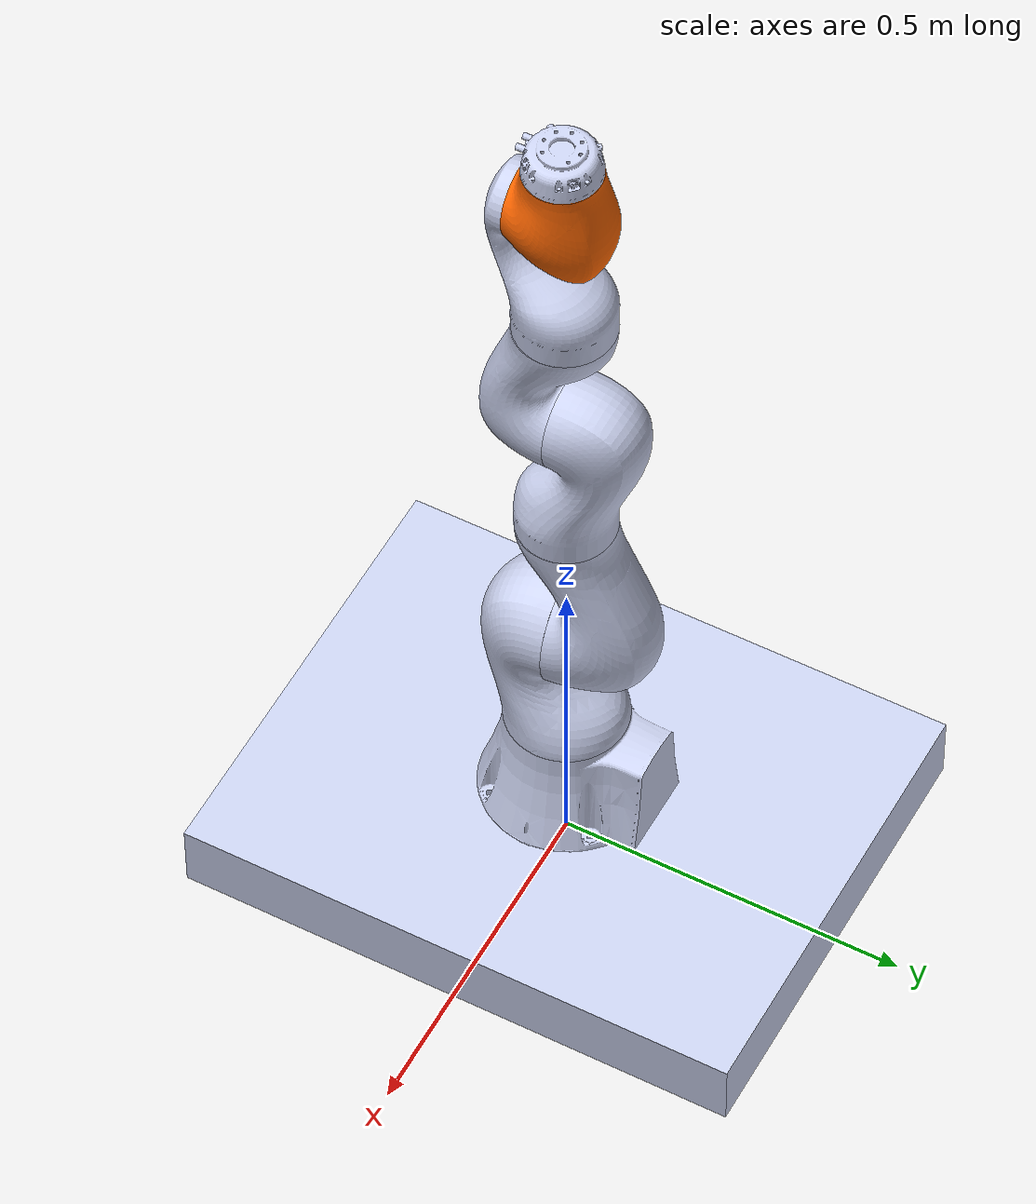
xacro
<?xml version="1.0"?>
<!-- Name your robot here -->
<robot name ="" xmlns:xacro="http://wiki.ros.org/xacro">

<!-- Include your urdf files here -->
	<!-- Include Robot's urdf filepath -->
	<!-- Include Lidar's urdf filepath -->
	<xacro:include filename="$(find Assembly_Toby)/urdf/Assembly_Toby.urdf"/>

<!-- Add your gazebo sensors here -->

<!--  Gazebo plugin for control here is already added for you -->
	<gazebo>
		<plugin name="gazebo_ros_control" filename="libgazebo_ros_control.so">
			<robotNamespace>/Assembly_Toby</robotNamespace>
			<robotSimType>gazebo_ros_control/DefaultRobotHWSim</robotSimType>
			<legacyModeNS>true</legacyModeNS>
		</plugin>
	</gazebo>

</robot>

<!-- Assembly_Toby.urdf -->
<robot
  name="Assembly_Toby">
  <!-- joint_1 transmission -->
  <transmission name="joint_1_transmission">
    <type>transmission_interface/SimpleTransmission</type>
    <joint name="joint1">
      <hardwareInterface>hardware_interface/EffortJointInterface</hardwareInterface>
    </joint>
    <actuator name="link1_motor">
      <mechanicalReduction>1</mechanicalReduction>
    </actuator>
  </transmission>
  <!-- joint_2 transmission -->
  <transmission name="joint_2_transmission">
    <type>transmission_interface/SimpleTransmission</type>
    <joint name="joint2">
      <hardwareInterface>hardware_interface/EffortJointInterface</hardwareInterface>
    </joint>
    <actuator name="link2_motor">
      <mechanicalReduction>1</mechanicalReduction>
    </actuator>
  </transmission>
  <!-- joint_3 transmission -->
  <transmission name="joint_3_transmission">
    <type>transmission_interface/SimpleTransmission</type>
    <joint name="joint3">
      <hardwareInterface>hardware_interface/EffortJointInterface</hardwareInterface>
    </joint>
    <actuator name="link3_motor">
      <mechanicalReduction>1</mechanicalReduction>
    </actuator>
  </transmission>
  <!-- joint_4 transmission -->
  <transmission name="joint_4_transmission">
    <type>transmission_interface/SimpleTransmission</type>
    <joint name="joint4">
      <hardwareInterface>hardware_interface/EffortJointInterface</hardwareInterface>
    </joint>
    <actuator name="link4_motor">
      <mechanicalReduction>1</mechanicalReduction>
    </actuator>
  </transmission>
  <!-- joint_5 transmission -->
  <transmission name="joint_5_transmission">
    <type>transmission_interface/SimpleTransmission</type>
    <joint name="joint5">
      <hardwareInterface>hardware_interface/EffortJointInterface</hardwareInterface>
    </joint>
    <actuator name="link5_motor">
      <mechanicalReduction>1</mechanicalReduction>
    </actuator>
  </transmission>
  <!-- joint_6 transmission -->
  <transmission name="joint_6_transmission">
    <type>transmission_interface/SimpleTransmission</type>
    <joint name="joint6">
      <hardwareInterface>hardware_interface/EffortJointInterface</hardwareInterface>
    </joint>
    <actuator name="link6_motor">
      <mechanicalReduction>1</mechanicalReduction>
    </actuator>
  </transmission>
  <link name="dummy_link"/>
  <joint name="dummy_joint" type="fixed">
    <parent link="dummy_link"/>
    <child link="base_link"/>
  </joint>
  <link
    name="base_link">
    <inertial>
      <origin
        xyz="-6.1333E-09 0.001192 0.061975"
        rpy="0 0 0" />
      <mass
        value="58.9" />
      <inertia
        ixx="3.1312"
        ixy="-1.4789E-07"
        ixz="7.3741E-08"
        iyy="1.9816"
        iyz="-0.0083382"
        izz="4.8555" />
    </inertial>
    <visual>
      <origin
        xyz="0 0 0"
        rpy="0 0 0" />
      <geometry>
        <mesh
          filename="package://Assembly_Toby/meshes/base_link.STL" />
      </geometry>
      <material
        name="">
        <color
          rgba="0.79216 0.81961 0.93333 1" />
      </material>
    </visual>
    <collision>
      <origin
        xyz="0 0 0"
        rpy="0 0 0" />
      <geometry>
        <mesh
          filename="package://Assembly_Toby/meshes/base_link.STL" />
      </geometry>
    </collision>
  </link>
  <link
    name="link1">
    <inertial>
      <origin
        xyz="0.00218040736347661 -0.0337243626061711 0.13240264410857"
        rpy="0 0 0" />
      <mass
        value="4.10859469064854" />
      <inertia
        ixx="0.0329828168996495"
        ixy="-1.885243223923E-05"
        ixz="-0.000317717999951916"
        iyy="0.0332728022225939"
        iyz="0.00491522141997692"
        izz="0.0123261606174739" />
    </inertial>
    <visual>
      <origin
        xyz="0 0 0"
        rpy="0 0 0" />
      <geometry>
        <mesh
          filename="package://Assembly_Toby/meshes/link1.STL" />
      </geometry>
      <material
        name="">
        <color
          rgba="0.792156862745098 0.819607843137255 0.933333333333333 1" />
      </material>
    </visual>
    <collision>
      <origin
        xyz="0 0 0"
        rpy="0 0 0" />
      <geometry>
        <mesh
          filename="package://Assembly_Toby/meshes/link1.STL" />
      </geometry>
    </collision>
  </link>
  <joint
    name="joint1"
    type="revolute">
    <origin
      xyz="0 0 0.2471"
      rpy="0 0 0" />
    <parent
      link="base_link" />
    <child
      link="link1" />
    <axis
      xyz="0 0 1" />
    <limit
      lower="-0.9"
      upper="2.1"
      effort="176"
      velocity="1.71" />
  </joint>
  <link
    name="link2">
    <inertial>
      <origin
        xyz="-0.00224951008157334 -0.0588037877711722 0.0419291900081337"
        rpy="0 0 0" />
      <mass
        value="3.95133738375509" />
      <inertia
        ixx="0.0305911214182363"
        ixy="0.000384143051145242"
        ixz="1.3991331030136E-05"
        iyy="0.0110160468915564"
        iyz="-0.00487226554152378"
        izz="0.0304178401654204" />
    </inertial>
    <visual>
      <origin
        xyz="0 0 0"
        rpy="0 0 0" />
      <geometry>
        <mesh
          filename="package://Assembly_Toby/meshes/link2.STL" />
      </geometry>
      <material
        name="">
        <color
          rgba="0.792156862745098 0.819607843137255 0.933333333333333 1" />
      </material>
    </visual>
    <collision>
      <origin
        xyz="0 0 0"
        rpy="0 0 0" />
      <geometry>
        <mesh
          filename="package://Assembly_Toby/meshes/link2.STL" />
      </geometry>
    </collision>
  </link>
  <joint
    name="joint2"
    type="revolute">
    <origin
      xyz="0 0 0.2125"
      rpy="-1.5708 0 0" />
    <parent
      link="link1" />
    <child
      link="link2" />
    <axis
      xyz="-0.064561 0 0.99791" />
    <limit
      lower="-0.9"
      upper="2.1"
      effort="176"
      velocity="1.71" />
  </joint>
  <link
    name="link3">
    <inertial>
      <origin
        xyz="0.000407774908811655 0.0296054328873839 0.137231530843093"
        rpy="0 0 0" />
      <mass
        value="3.1752208370526" />
      <inertia
        ixx="0.0250811227510902"
        ixy="-1.22863788990659E-05"
        ixz="-4.05919789844277E-05"
        iyy="0.0238065793879945"
        iyz="-0.00487926204075716"
        izz="0.00761195363857435" />
    </inertial>
    <visual>
      <origin
        xyz="0 0 0"
        rpy="0 0 0" />
      <geometry>
        <mesh
          filename="package://Assembly_Toby/meshes/link3.STL" />
      </geometry>
      <material
        name="">
        <color
          rgba="0.792156862745098 0.819607843137255 0.933333333333333 1" />
      </material>
    </visual>
    <collision>
      <origin
        xyz="0 0 0"
        rpy="0 0 0" />
      <geometry>
        <mesh
          filename="package://Assembly_Toby/meshes/link3.STL" />
      </geometry>
    </collision>
  </link>
  <joint
    name="joint3"
    type="revolute">
    <origin
      xyz="0.0010034 -0.19375 6.4919E-05"
      rpy="1.5708 0 0" />
    <parent
      link="link2" />
    <child
      link="link3" />
    <axis
      xyz="0.0051789 0.00033506 0.99999" />
    <limit
      lower="0"
      upper="0"
      effort="110"
      velocity="1.75" />
  </joint>
  <link
    name="link4">
    <inertial>
      <origin
        xyz="0.00126854168597214 0.0674228239951259 0.0342355072935625"
        rpy="0 0 0" />
      <mass
        value="2.73947739501148" />
      <inertia
        ixx="0.0172019613725885"
        ixy="-0.000121157014887672"
        ixz="3.03511288037442E-05"
        iyy="0.00614202735823452"
        iyz="0.00285119542642798"
        izz="0.0163920821096097" />
    </inertial>
    <visual>
      <origin
        xyz="0 0 0"
        rpy="0 0 0" />
      <geometry>
        <mesh
          filename="package://Assembly_Toby/meshes/link4.STL" />
      </geometry>
      <material
        name="">
        <color
          rgba="0.792156862745098 0.819607843137255 0.933333333333333 1" />
      </material>
    </visual>
    <collision>
      <origin
        xyz="0 0 0"
        rpy="0 0 0" />
      <geometry>
        <mesh
          filename="package://Assembly_Toby/meshes/link4.STL" />
      </geometry>
    </collision>
  </link>
  <joint
    name="joint4"
    type="revolute">
    <origin
      xyz="0.0011717 7.5805E-05 0.22624"
      rpy="1.5708 0 0" />
    <parent
      link="link3" />
    <child
      link="link4" />
    <axis
      xyz="-0.010268 -0.00028187 -0.99995" />
    <limit
      lower="-0.9"
      upper="2.1"
      effort="110"
      velocity="2.27" />
  </joint>
  <link
    name="link5">
    <inertial>
      <origin
        xyz="0.00184747133426656 -0.0213411848305411 0.0873391392526374"
        rpy="0 0 0" />
      <mass
        value="1.69373164551603" />
      <inertia
        ixx="0.010074017921833"
        ixy="9.37665425692705E-05"
        ixz="-0.000189793907736472"
        iyy="0.00870732248467382"
        iyz="0.00308564712839952"
        izz="0.00447089835426417" />
    </inertial>
    <visual>
      <origin
        xyz="0 0 0"
        rpy="0 0 0" />
      <geometry>
        <mesh
          filename="package://Assembly_Toby/meshes/link5.STL" />
      </geometry>
      <material
        name="">
        <color
          rgba="0.792156862745098 0.819607843137255 0.933333333333333 1" />
      </material>
    </visual>
    <collision>
      <origin
        xyz="0 0 0"
        rpy="0 0 0" />
      <geometry>
        <mesh
          filename="package://Assembly_Toby/meshes/link5.STL" />
      </geometry>
    </collision>
  </link>
  <joint
    name="joint5"
    type="revolute">
    <origin
      xyz="0.0023439 0.17261 -7.2723E-05"
      rpy="-1.5708 0 0" />
    <parent
      link="link4" />
    <child
      link="link5" />
    <axis
      xyz="0.013578 0.00042129 0.99991" />
    <limit
      lower="-0.9"
      upper="2.1"
      effort="110"
      velocity="2.44" />
  </joint>
  <link
    name="link6">
    <inertial>
      <origin
        xyz="7.50055666359252E-06 -0.000569408333507271 0.000341254726302915"
        rpy="0 0 0" />
      <mass
        value="1.80835881130111" />
      <inertia
        ixx="0.00489234780264599"
        ixy="4.72697114844994E-05"
        ixz="1.49334558140658E-05"
        iyy="0.0035670848019546"
        iyz="-0.000242823408745221"
        izz="0.00468642315917161" />
    </inertial>
    <visual>
      <origin
        xyz="0 0 0"
        rpy="0 0 0" />
      <geometry>
        <mesh
          filename="package://Assembly_Toby/meshes/link6.STL" />
      </geometry>
      <material
        name="">
        <color
          rgba="1 0.4 0 1" />
      </material>
    </visual>
    <collision>
      <origin
        xyz="0 0 0"
        rpy="0 0 0" />
      <geometry>
        <mesh
          filename="package://Assembly_Toby/meshes/link6.STL" />
      </geometry>
    </collision>
  </link>
  <joint
    name="joint6"
    type="revolute">
    <origin
      xyz="0.0030874 9.5791E-05 0.22736"
      rpy="-1.5708 0 0" />
    <parent
      link="link5" />
    <child
      link="link6" />
    <axis
      xyz="-0.036539 -7.5142E-05 0.99933" />
    <limit
      lower="-0.9"
      upper="2.1"
      effort="40"
      velocity="3.14" />
  </joint>
  <link
    name="link7">
    <inertial>
      <origin
        xyz="0.00088317289766324 -6.5339627583698E-05 0.0302627878909889"
        rpy="0 0 0" />
      <mass
        value="0.311354571095797" />
      <inertia
        ixx="0.000222562363030159"
        ixy="5.77714357954496E-08"
        ixz="3.36766488756988E-06"
        iyy="0.000221327958811756"
        iyz="3.6248865261704E-07"
        izz="0.000341927344423913" />
    </inertial>
    <visual>
      <origin
        xyz="0 0 0"
        rpy="0 0 0" />
      <geometry>
        <mesh
          filename="package://Assembly_Toby/meshes/link7.STL" />
      </geometry>
      <material
        name="">
        <color
          rgba="0.792156862745098 0.819607843137255 0.933333333333333 1" />
      </material>
    </visual>
    <collision>
      <origin
        xyz="0 0 0"
        rpy="0 0 0" />
      <geometry>
        <mesh
          filename="package://Assembly_Toby/meshes/link7.STL" />
      </geometry>
    </collision>
  </link>
  <joint
    name="joint7"
    type="revolute">
    <origin
      xyz="0.0019653 -0.068075 6.6741E-05"
      rpy="1.5708 0 0" />
    <parent
      link="link6" />
    <child
      link="link7" />
    <axis
      xyz="0.028858 0.00097999 0.99958" />
    <limit
      lower="-0.9"
      upper="2.1"
      effort="40"
      velocity="3.14" />
  </joint>
</robot>
